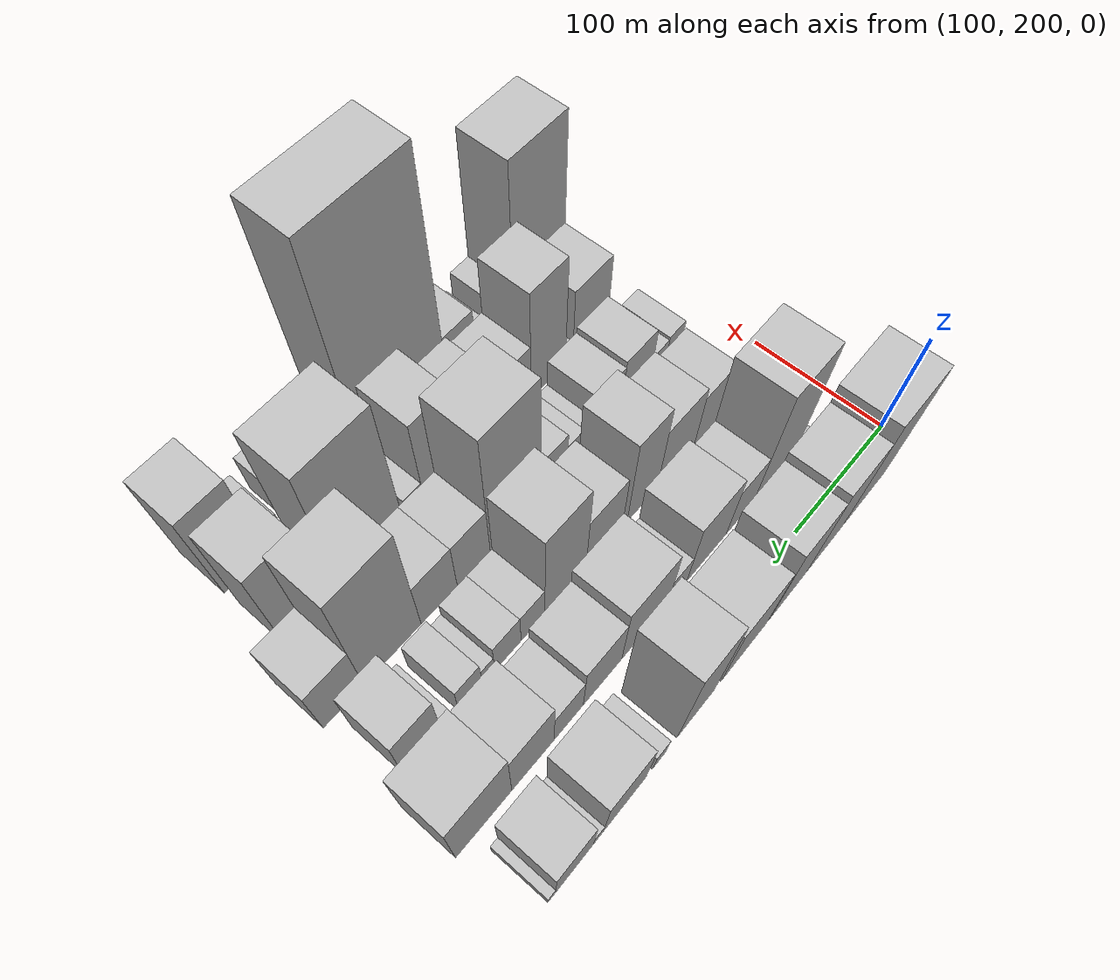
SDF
<sdf version="1.6">
 <world name="default">
  <model name="building_32">
   <static>1</static>
   <pose>100.0000 253.0054 0 0.000000 0.000000 0.000000</pose>
   <link name="link">
    <pose>0 0 63.00 0 0 0</pose>
    <collision name="collision"><geometry><box><size>40.0000 49.4817 126.0000</size></box></geometry></collision>
    <visual name="visual">
     <cast_shadows>0</cast_shadows>
     <geometry><box><size>40.0000 49.4817 126.0000</size></box></geometry>
     <material>
      <script>
       <uri>model://HANNAS_wall/materials/scripts</uri>
       <uri>model://HANNAS_wall/materials/textures</uri>
       <name>vrc/HANNAS_wall</name>
      </script>
     </material>
    </visual>
   </link>
  </model>
  <model name="building_33">
   <static>1</static>
   <pose>100.0000 297.9278 0 0.000000 0.000000 0.000000</pose>
   <link name="link">
    <pose>0 0 54.00 0 0 0</pose>
    <collision name="collision"><geometry><box><size>40.0000 40.3631 108.0000</size></box></geometry></collision>
    <visual name="visual">
     <cast_shadows>0</cast_shadows>
     <geometry><box><size>40.0000 40.3631 108.0000</size></box></geometry>
     <material>
      <script>
       <uri>model://HANNAS_wall/materials/scripts</uri>
       <uri>model://HANNAS_wall/materials/textures</uri>
       <name>vrc/HANNAS_wall</name>
      </script>
     </material>
    </visual>
   </link>
  </model>
  <model name="building_34">
   <static>1</static>
   <pose>100.0000 337.8094 0 0.000000 0.000000 0.000000</pose>
   <link name="link">
    <pose>0 0 49.50 0 0 0</pose>
    <collision name="collision"><geometry><box><size>40.0000 39.4001 99.0000</size></box></geometry></collision>
    <visual name="visual">
     <cast_shadows>0</cast_shadows>
     <geometry><box><size>40.0000 39.4001 99.0000</size></box></geometry>
     <material>
      <script>
       <uri>model://HANNAS_wall/materials/scripts</uri>
       <uri>model://HANNAS_wall/materials/textures</uri>
       <name>vrc/HANNAS_wall</name>
      </script>
     </material>
    </visual>
   </link>
  </model>
  <model name="building_35">
   <static>1</static>
   <pose>100.0000 383.2852 0 0.000000 0.000000 0.000000</pose>
   <link name="link">
    <pose>0 0 40.50 0 0 0</pose>
    <collision name="collision"><geometry><box><size>40.0000 45.5514 81.0000</size></box></geometry></collision>
    <visual name="visual">
     <cast_shadows>0</cast_shadows>
     <geometry><box><size>40.0000 45.5514 81.0000</size></box></geometry>
     <material>
      <script>
       <uri>model://HANNAS_wall/materials/scripts</uri>
       <uri>model://HANNAS_wall/materials/textures</uri>
       <name>vrc/HANNAS_wall</name>
      </script>
     </material>
    </visual>
   </link>
  </model>
  <model name="building_36">
   <static>1</static>
   <pose>100.0000 430.8100 0 0.000000 0.000000 0.000000</pose>
   <link name="link">
    <pose>0 0 57.00 0 0 0</pose>
    <collision name="collision"><geometry><box><size>40.0000 35.4983 114.0000</size></box></geometry></collision>
    <visual name="visual">
     <cast_shadows>0</cast_shadows>
     <geometry><box><size>40.0000 35.4983 114.0000</size></box></geometry>
     <material>
      <script>
       <uri>model://HANNAS_wall/materials/scripts</uri>
       <uri>model://HANNAS_wall/materials/textures</uri>
       <name>vrc/HANNAS_wall</name>
      </script>
     </material>
    </visual>
   </link>
  </model>
  <model name="building_37">
   <static>1</static>
   <pose>100.0000 464.8582 0 0.000000 0.000000 0.000000</pose>
   <link name="link">
    <pose>0 0 13.50 0 0 0</pose>
    <collision name="collision"><geometry><box><size>40.0000 12.5981 27.0000</size></box></geometry></collision>
    <visual name="visual">
     <cast_shadows>0</cast_shadows>
     <geometry><box><size>40.0000 12.5981 27.0000</size></box></geometry>
     <material>
      <script>
       <uri>model://HANNAS_wall/materials/scripts</uri>
       <uri>model://HANNAS_wall/materials/textures</uri>
       <name>vrc/HANNAS_wall</name>
      </script>
     </material>
    </visual>
   </link>
  </model>
  <model name="building_38">
   <static>1</static>
   <pose>100.0000 495.9969 0 0.000000 0.000000 0.000000</pose>
   <link name="link">
    <pose>0 0 34.50 0 0 0</pose>
    <collision name="collision"><geometry><box><size>40.0000 37.6793 69.0000</size></box></geometry></collision>
    <visual name="visual">
     <cast_shadows>0</cast_shadows>
     <geometry><box><size>40.0000 37.6793 69.0000</size></box></geometry>
     <material>
      <script>
       <uri>model://HANNAS_wall/materials/scripts</uri>
       <uri>model://HANNAS_wall/materials/textures</uri>
       <name>vrc/HANNAS_wall</name>
      </script>
     </material>
    </visual>
   </link>
  </model>
  <model name="building_39">
   <static>1</static>
   <pose>100.0000 519.1426 0 0.000000 0.000000 0.000000</pose>
   <link name="link">
    <pose>0 0 9.00 0 0 0</pose>
    <collision name="collision"><geometry><box><size>40.0000 8.6120 18.0000</size></box></geometry></collision>
    <visual name="visual">
     <cast_shadows>0</cast_shadows>
     <geometry><box><size>40.0000 8.6120 18.0000</size></box></geometry>
     <material>
      <script>
       <uri>model://HANNAS_wall/materials/scripts</uri>
       <uri>model://HANNAS_wall/materials/textures</uri>
       <name>vrc/HANNAS_wall</name>
      </script>
     </material>
    </visual>
   </link>
  </model>
  <model name="building_40">
   <static>1</static>
   <pose>100.0000 539.2763 0 0.000000 0.000000 0.000000</pose>
   <link name="link">
    <pose>0 0 28.50 0 0 0</pose>
    <collision name="collision"><geometry><box><size>40.0000 31.6553 57.0000</size></box></geometry></collision>
    <visual name="visual">
     <cast_shadows>0</cast_shadows>
     <geometry><box><size>40.0000 31.6553 57.0000</size></box></geometry>
     <material>
      <script>
       <uri>model://HANNAS_wall/materials/scripts</uri>
       <uri>model://HANNAS_wall/materials/textures</uri>
       <name>vrc/HANNAS_wall</name>
      </script>
     </material>
    </visual>
   </link>
  </model>
  <model name="building_41">
   <static>1</static>
   <pose>100.0000 558.1478 0 0.000000 0.000000 0.000000</pose>
   <link name="link">
    <pose>0 0 7.50 0 0 0</pose>
    <collision name="collision"><geometry><box><size>40.0000 6.0878 15.0000</size></box></geometry></collision>
    <visual name="visual">
     <cast_shadows>0</cast_shadows>
     <geometry><box><size>40.0000 6.0878 15.0000</size></box></geometry>
     <material>
      <script>
       <uri>model://HANNAS_wall/materials/scripts</uri>
       <uri>model://HANNAS_wall/materials/textures</uri>
       <name>vrc/HANNAS_wall</name>
      </script>
     </material>
    </visual>
   </link>
  </model>
  <model name="building_81">
   <static>1</static>
   <pose>152.0000 248.3616 0 0.000000 0.000000 0.000000</pose>
   <link name="link">
    <pose>0 0 10.50 0 0 0</pose>
    <collision name="collision"><geometry><box><size>40.0000 9.3138 21.0000</size></box></geometry></collision>
    <visual name="visual">
     <cast_shadows>0</cast_shadows>
     <geometry><box><size>40.0000 9.3138 21.0000</size></box></geometry>
     <material>
      <script>
       <uri>model://HANNAS_wall/materials/scripts</uri>
       <uri>model://HANNAS_wall/materials/textures</uri>
       <name>vrc/HANNAS_wall</name>
      </script>
     </material>
    </visual>
   </link>
  </model>
  <model name="building_82">
   <static>1</static>
   <pose>152.0000 276.0026 0 0.000000 0.000000 0.000000</pose>
   <link name="link">
    <pose>0 0 63.00 0 0 0</pose>
    <collision name="collision"><geometry><box><size>40.0000 45.9682 126.0000</size></box></geometry></collision>
    <visual name="visual">
     <cast_shadows>0</cast_shadows>
     <geometry><box><size>40.0000 45.9682 126.0000</size></box></geometry>
     <material>
      <script>
       <uri>model://HANNAS_wall/materials/scripts</uri>
       <uri>model://HANNAS_wall/materials/textures</uri>
       <name>vrc/HANNAS_wall</name>
      </script>
     </material>
    </visual>
   </link>
  </model>
  <model name="building_83">
   <static>1</static>
   <pose>152.0000 313.8508 0 0.000000 0.000000 0.000000</pose>
   <link name="link">
    <pose>0 0 28.50 0 0 0</pose>
    <collision name="collision"><geometry><box><size>40.0000 29.7282 57.0000</size></box></geometry></collision>
    <visual name="visual">
     <cast_shadows>0</cast_shadows>
     <geometry><box><size>40.0000 29.7282 57.0000</size></box></geometry>
     <material>
      <script>
       <uri>model://HANNAS_wall/materials/scripts</uri>
       <uri>model://HANNAS_wall/materials/textures</uri>
       <name>vrc/HANNAS_wall</name>
      </script>
     </material>
    </visual>
   </link>
  </model>
  <model name="building_84">
   <static>1</static>
   <pose>152.0000 349.1317 0 0.000000 0.000000 0.000000</pose>
   <link name="link">
    <pose>0 0 37.50 0 0 0</pose>
    <collision name="collision"><geometry><box><size>40.0000 40.8337 75.0000</size></box></geometry></collision>
    <visual name="visual">
     <cast_shadows>0</cast_shadows>
     <geometry><box><size>40.0000 40.8337 75.0000</size></box></geometry>
     <material>
      <script>
       <uri>model://HANNAS_wall/materials/scripts</uri>
       <uri>model://HANNAS_wall/materials/textures</uri>
       <name>vrc/HANNAS_wall</name>
      </script>
     </material>
    </visual>
   </link>
  </model>
  <model name="building_85">
   <static>1</static>
   <pose>152.0000 379.1032 0 0.000000 0.000000 0.000000</pose>
   <link name="link">
    <pose>0 0 18.00 0 0 0</pose>
    <collision name="collision"><geometry><box><size>40.0000 19.1092 36.0000</size></box></geometry></collision>
    <visual name="visual">
     <cast_shadows>0</cast_shadows>
     <geometry><box><size>40.0000 19.1092 36.0000</size></box></geometry>
     <material>
      <script>
       <uri>model://HANNAS_wall/materials/scripts</uri>
       <uri>model://HANNAS_wall/materials/textures</uri>
       <name>vrc/HANNAS_wall</name>
      </script>
     </material>
    </visual>
   </link>
  </model>
  <model name="building_86">
   <static>1</static>
   <pose>152.0000 410.8548 0 0.000000 0.000000 0.000000</pose>
   <link name="link">
    <pose>0 0 37.50 0 0 0</pose>
    <collision name="collision"><geometry><box><size>40.0000 44.3940 75.0000</size></box></geometry></collision>
    <visual name="visual">
     <cast_shadows>0</cast_shadows>
     <geometry><box><size>40.0000 44.3940 75.0000</size></box></geometry>
     <material>
      <script>
       <uri>model://HANNAS_wall/materials/scripts</uri>
       <uri>model://HANNAS_wall/materials/textures</uri>
       <name>vrc/HANNAS_wall</name>
      </script>
     </material>
    </visual>
   </link>
  </model>
  <model name="building_87">
   <static>1</static>
   <pose>152.0000 450.8111 0 0.000000 0.000000 0.000000</pose>
   <link name="link">
    <pose>0 0 30.00 0 0 0</pose>
    <collision name="collision"><geometry><box><size>40.0000 35.5186 60.0000</size></box></geometry></collision>
    <visual name="visual">
     <cast_shadows>0</cast_shadows>
     <geometry><box><size>40.0000 35.5186 60.0000</size></box></geometry>
     <material>
      <script>
       <uri>model://HANNAS_wall/materials/scripts</uri>
       <uri>model://HANNAS_wall/materials/textures</uri>
       <name>vrc/HANNAS_wall</name>
      </script>
     </material>
    </visual>
   </link>
  </model>
  <model name="building_88">
   <static>1</static>
   <pose>152.0000 481.5410 0 0.000000 0.000000 0.000000</pose>
   <link name="link">
    <pose>0 0 22.50 0 0 0</pose>
    <collision name="collision"><geometry><box><size>40.0000 25.9411 45.0000</size></box></geometry></collision>
    <visual name="visual">
     <cast_shadows>0</cast_shadows>
     <geometry><box><size>40.0000 25.9411 45.0000</size></box></geometry>
     <material>
      <script>
       <uri>model://HANNAS_wall/materials/scripts</uri>
       <uri>model://HANNAS_wall/materials/textures</uri>
       <name>vrc/HANNAS_wall</name>
      </script>
     </material>
    </visual>
   </link>
  </model>
  <model name="building_89">
   <static>1</static>
   <pose>152.0000 512.5431 0 0.000000 0.000000 0.000000</pose>
   <link name="link">
    <pose>0 0 34.50 0 0 0</pose>
    <collision name="collision"><geometry><box><size>40.0000 36.0630 69.0000</size></box></geometry></collision>
    <visual name="visual">
     <cast_shadows>0</cast_shadows>
     <geometry><box><size>40.0000 36.0630 69.0000</size></box></geometry>
     <material>
      <script>
       <uri>model://HANNAS_wall/materials/scripts</uri>
       <uri>model://HANNAS_wall/materials/textures</uri>
       <name>vrc/HANNAS_wall</name>
      </script>
     </material>
    </visual>
   </link>
  </model>
  <model name="building_90">
   <static>1</static>
   <pose>152.0000 553.4708 0 0.000000 0.000000 0.000000</pose>
   <link name="link">
    <pose>0 0 39.00 0 0 0</pose>
    <collision name="collision"><geometry><box><size>40.0000 45.7924 78.0000</size></box></geometry></collision>
    <visual name="visual">
     <cast_shadows>0</cast_shadows>
     <geometry><box><size>40.0000 45.7924 78.0000</size></box></geometry>
     <material>
      <script>
       <uri>model://HANNAS_wall/materials/scripts</uri>
       <uri>model://HANNAS_wall/materials/textures</uri>
       <name>vrc/HANNAS_wall</name>
      </script>
     </material>
    </visual>
   </link>
  </model>
  <model name="building_130">
   <static>1</static>
   <pose>204.0000 275.4992 0 0.000000 0.000000 0.000000</pose>
   <link name="link">
    <pose>0 0 30.00 0 0 0</pose>
    <collision name="collision"><geometry><box><size>40.0000 33.4152 60.0000</size></box></geometry></collision>
    <visual name="visual">
     <cast_shadows>0</cast_shadows>
     <geometry><box><size>40.0000 33.4152 60.0000</size></box></geometry>
     <material>
      <script>
       <uri>model://HANNAS_wall/materials/scripts</uri>
       <uri>model://HANNAS_wall/materials/textures</uri>
       <name>vrc/HANNAS_wall</name>
      </script>
     </material>
    </visual>
   </link>
  </model>
  <model name="building_131">
   <static>1</static>
   <pose>204.0000 311.7032 0 0.000000 0.000000 0.000000</pose>
   <link name="link">
    <pose>0 0 36.00 0 0 0</pose>
    <collision name="collision"><geometry><box><size>40.0000 38.9928 72.0000</size></box></geometry></collision>
    <visual name="visual">
     <cast_shadows>0</cast_shadows>
     <geometry><box><size>40.0000 38.9928 72.0000</size></box></geometry>
     <material>
      <script>
       <uri>model://HANNAS_wall/materials/scripts</uri>
       <uri>model://HANNAS_wall/materials/textures</uri>
       <name>vrc/HANNAS_wall</name>
      </script>
     </material>
    </visual>
   </link>
  </model>
  <model name="building_132">
   <static>1</static>
   <pose>204.0000 346.5646 0 0.000000 0.000000 0.000000</pose>
   <link name="link">
    <pose>0 0 49.50 0 0 0</pose>
    <collision name="collision"><geometry><box><size>40.0000 30.7300 99.0000</size></box></geometry></collision>
    <visual name="visual">
     <cast_shadows>0</cast_shadows>
     <geometry><box><size>40.0000 30.7300 99.0000</size></box></geometry>
     <material>
      <script>
       <uri>model://HANNAS_wall/materials/scripts</uri>
       <uri>model://HANNAS_wall/materials/textures</uri>
       <name>vrc/HANNAS_wall</name>
      </script>
     </material>
    </visual>
   </link>
  </model>
  <model name="building_133">
   <static>1</static>
   <pose>204.0000 384.7254 0 0.000000 0.000000 0.000000</pose>
   <link name="link">
    <pose>0 0 33.00 0 0 0</pose>
    <collision name="collision"><geometry><box><size>40.0000 35.5917 66.0000</size></box></geometry></collision>
    <visual name="visual">
     <cast_shadows>0</cast_shadows>
     <geometry><box><size>40.0000 35.5917 66.0000</size></box></geometry>
     <material>
      <script>
       <uri>model://HANNAS_wall/materials/scripts</uri>
       <uri>model://HANNAS_wall/materials/textures</uri>
       <name>vrc/HANNAS_wall</name>
      </script>
     </material>
    </visual>
   </link>
  </model>
  <model name="building_134">
   <static>1</static>
   <pose>204.0000 421.8141 0 0.000000 0.000000 0.000000</pose>
   <link name="link">
    <pose>0 0 54.00 0 0 0</pose>
    <collision name="collision"><geometry><box><size>40.0000 38.5857 108.0000</size></box></geometry></collision>
    <visual name="visual">
     <cast_shadows>0</cast_shadows>
     <geometry><box><size>40.0000 38.5857 108.0000</size></box></geometry>
     <material>
      <script>
       <uri>model://HANNAS_wall/materials/scripts</uri>
       <uri>model://HANNAS_wall/materials/textures</uri>
       <name>vrc/HANNAS_wall</name>
      </script>
     </material>
    </visual>
   </link>
  </model>
  <model name="building_135">
   <static>1</static>
   <pose>204.0000 451.9157 0 0.000000 0.000000 0.000000</pose>
   <link name="link">
    <pose>0 0 19.50 0 0 0</pose>
    <collision name="collision"><geometry><box><size>40.0000 21.6175 39.0000</size></box></geometry></collision>
    <visual name="visual">
     <cast_shadows>0</cast_shadows>
     <geometry><box><size>40.0000 21.6175 39.0000</size></box></geometry>
     <material>
      <script>
       <uri>model://HANNAS_wall/materials/scripts</uri>
       <uri>model://HANNAS_wall/materials/textures</uri>
       <name>vrc/HANNAS_wall</name>
      </script>
     </material>
    </visual>
   </link>
  </model>
  <model name="building_136">
   <static>1</static>
   <pose>204.0000 474.3394 0 0.000000 0.000000 0.000000</pose>
   <link name="link">
    <pose>0 0 19.50 0 0 0</pose>
    <collision name="collision"><geometry><box><size>40.0000 23.2300 39.0000</size></box></geometry></collision>
    <visual name="visual">
     <cast_shadows>0</cast_shadows>
     <geometry><box><size>40.0000 23.2300 39.0000</size></box></geometry>
     <material>
      <script>
       <uri>model://HANNAS_wall/materials/scripts</uri>
       <uri>model://HANNAS_wall/materials/textures</uri>
       <name>vrc/HANNAS_wall</name>
      </script>
     </material>
    </visual>
   </link>
  </model>
  <model name="building_137">
   <static>1</static>
   <pose>204.0000 491.3714 0 0.000000 0.000000 0.000000</pose>
   <link name="link">
    <pose>0 0 12.00 0 0 0</pose>
    <collision name="collision"><geometry><box><size>40.0000 10.8340 24.0000</size></box></geometry></collision>
    <visual name="visual">
     <cast_shadows>0</cast_shadows>
     <geometry><box><size>40.0000 10.8340 24.0000</size></box></geometry>
     <material>
      <script>
       <uri>model://HANNAS_wall/materials/scripts</uri>
       <uri>model://HANNAS_wall/materials/textures</uri>
       <name>vrc/HANNAS_wall</name>
      </script>
     </material>
    </visual>
   </link>
  </model>
  <model name="building_138">
   <static>1</static>
   <pose>204.0000 506.8794 0 0.000000 0.000000 0.000000</pose>
   <link name="link">
    <pose>0 0 18.00 0 0 0</pose>
    <collision name="collision"><geometry><box><size>40.0000 20.1819 36.0000</size></box></geometry></collision>
    <visual name="visual">
     <cast_shadows>0</cast_shadows>
     <geometry><box><size>40.0000 20.1819 36.0000</size></box></geometry>
     <material>
      <script>
       <uri>model://HANNAS_wall/materials/scripts</uri>
       <uri>model://HANNAS_wall/materials/textures</uri>
       <name>vrc/HANNAS_wall</name>
      </script>
     </material>
    </visual>
   </link>
  </model>
  <model name="building_139">
   <static>1</static>
   <pose>204.0000 527.2368 0 0.000000 0.000000 0.000000</pose>
   <link name="link">
    <pose>0 0 10.50 0 0 0</pose>
    <collision name="collision"><geometry><box><size>40.0000 8.5329 21.0000</size></box></geometry></collision>
    <visual name="visual">
     <cast_shadows>0</cast_shadows>
     <geometry><box><size>40.0000 8.5329 21.0000</size></box></geometry>
     <material>
      <script>
       <uri>model://HANNAS_wall/materials/scripts</uri>
       <uri>model://HANNAS_wall/materials/textures</uri>
       <name>vrc/HANNAS_wall</name>
      </script>
     </material>
    </visual>
   </link>
  </model>
  <model name="building_140">
   <static>1</static>
   <pose>204.0000 547.2074 0 0.000000 0.000000 0.000000</pose>
   <link name="link">
    <pose>0 0 30.00 0 0 0</pose>
    <collision name="collision"><geometry><box><size>40.0000 31.4082 60.0000</size></box></geometry></collision>
    <visual name="visual">
     <cast_shadows>0</cast_shadows>
     <geometry><box><size>40.0000 31.4082 60.0000</size></box></geometry>
     <material>
      <script>
       <uri>model://HANNAS_wall/materials/scripts</uri>
       <uri>model://HANNAS_wall/materials/textures</uri>
       <name>vrc/HANNAS_wall</name>
      </script>
     </material>
    </visual>
   </link>
  </model>
  <model name="building_179">
   <static>1</static>
   <pose>256.0000 245.7353 0 0.000000 0.000000 0.000000</pose>
   <link name="link">
    <pose>0 0 16.50 0 0 0</pose>
    <collision name="collision"><geometry><box><size>40.0000 17.3064 33.0000</size></box></geometry></collision>
    <visual name="visual">
     <cast_shadows>0</cast_shadows>
     <geometry><box><size>40.0000 17.3064 33.0000</size></box></geometry>
     <material>
      <script>
       <uri>model://HANNAS_wall/materials/scripts</uri>
       <uri>model://HANNAS_wall/materials/textures</uri>
       <name>vrc/HANNAS_wall</name>
      </script>
     </material>
    </visual>
   </link>
  </model>
  <model name="building_180">
   <static>1</static>
   <pose>256.0000 262.8231 0 0.000000 0.000000 0.000000</pose>
   <link name="link">
    <pose>0 0 15.00 0 0 0</pose>
    <collision name="collision"><geometry><box><size>40.0000 16.8692 30.0000</size></box></geometry></collision>
    <visual name="visual">
     <cast_shadows>0</cast_shadows>
     <geometry><box><size>40.0000 16.8692 30.0000</size></box></geometry>
     <material>
      <script>
       <uri>model://HANNAS_wall/materials/scripts</uri>
       <uri>model://HANNAS_wall/materials/textures</uri>
       <name>vrc/HANNAS_wall</name>
      </script>
     </material>
    </visual>
   </link>
  </model>
  <model name="building_181">
   <static>1</static>
   <pose>256.0000 286.7656 0 0.000000 0.000000 0.000000</pose>
   <link name="link">
    <pose>0 0 30.00 0 0 0</pose>
    <collision name="collision"><geometry><box><size>40.0000 31.0158 60.0000</size></box></geometry></collision>
    <visual name="visual">
     <cast_shadows>0</cast_shadows>
     <geometry><box><size>40.0000 31.0158 60.0000</size></box></geometry>
     <material>
      <script>
       <uri>model://HANNAS_wall/materials/scripts</uri>
       <uri>model://HANNAS_wall/materials/textures</uri>
       <name>vrc/HANNAS_wall</name>
      </script>
     </material>
    </visual>
   </link>
  </model>
  <model name="building_182">
   <static>1</static>
   <pose>256.0000 316.2889 0 0.000000 0.000000 0.000000</pose>
   <link name="link">
    <pose>0 0 27.00 0 0 0</pose>
    <collision name="collision"><geometry><box><size>40.0000 28.0308 54.0000</size></box></geometry></collision>
    <visual name="visual">
     <cast_shadows>0</cast_shadows>
     <geometry><box><size>40.0000 28.0308 54.0000</size></box></geometry>
     <material>
      <script>
       <uri>model://HANNAS_wall/materials/scripts</uri>
       <uri>model://HANNAS_wall/materials/textures</uri>
       <name>vrc/HANNAS_wall</name>
      </script>
     </material>
    </visual>
   </link>
  </model>
  <model name="building_183">
   <static>1</static>
   <pose>256.0000 335.8461 0 0.000000 0.000000 0.000000</pose>
   <link name="link">
    <pose>0 0 13.50 0 0 0</pose>
    <collision name="collision"><geometry><box><size>40.0000 11.0838 27.0000</size></box></geometry></collision>
    <visual name="visual">
     <cast_shadows>0</cast_shadows>
     <geometry><box><size>40.0000 11.0838 27.0000</size></box></geometry>
     <material>
      <script>
       <uri>model://HANNAS_wall/materials/scripts</uri>
       <uri>model://HANNAS_wall/materials/textures</uri>
       <name>vrc/HANNAS_wall</name>
      </script>
     </material>
    </visual>
   </link>
  </model>
  <model name="building_184">
   <static>1</static>
   <pose>256.0000 349.5015 0 0.000000 0.000000 0.000000</pose>
   <link name="link">
    <pose>0 0 15.00 0 0 0</pose>
    <collision name="collision"><geometry><box><size>40.0000 16.2270 30.0000</size></box></geometry></collision>
    <visual name="visual">
     <cast_shadows>0</cast_shadows>
     <geometry><box><size>40.0000 16.2270 30.0000</size></box></geometry>
     <material>
      <script>
       <uri>model://HANNAS_wall/materials/scripts</uri>
       <uri>model://HANNAS_wall/materials/textures</uri>
       <name>vrc/HANNAS_wall</name>
      </script>
     </material>
    </visual>
   </link>
  </model>
  <model name="building_185">
   <static>1</static>
   <pose>256.0000 370.4041 0 0.000000 0.000000 0.000000</pose>
   <link name="link">
    <pose>0 0 22.50 0 0 0</pose>
    <collision name="collision"><geometry><box><size>40.0000 25.5781 45.0000</size></box></geometry></collision>
    <visual name="visual">
     <cast_shadows>0</cast_shadows>
     <geometry><box><size>40.0000 25.5781 45.0000</size></box></geometry>
     <material>
      <script>
       <uri>model://HANNAS_wall/materials/scripts</uri>
       <uri>model://HANNAS_wall/materials/textures</uri>
       <name>vrc/HANNAS_wall</name>
      </script>
     </material>
    </visual>
   </link>
  </model>
  <model name="building_186">
   <static>1</static>
   <pose>256.0000 407.4772 0 0.000000 0.000000 0.000000</pose>
   <link name="link">
    <pose>0 0 70.50 0 0 0</pose>
    <collision name="collision"><geometry><box><size>40.0000 48.5682 141.0000</size></box></geometry></collision>
    <visual name="visual">
     <cast_shadows>0</cast_shadows>
     <geometry><box><size>40.0000 48.5682 141.0000</size></box></geometry>
     <material>
      <script>
       <uri>model://HANNAS_wall/materials/scripts</uri>
       <uri>model://HANNAS_wall/materials/textures</uri>
       <name>vrc/HANNAS_wall</name>
      </script>
     </material>
    </visual>
   </link>
  </model>
  <model name="building_187">
   <static>1</static>
   <pose>256.0000 446.6829 0 0.000000 0.000000 0.000000</pose>
   <link name="link">
    <pose>0 0 28.50 0 0 0</pose>
    <collision name="collision"><geometry><box><size>40.0000 29.8433 57.0000</size></box></geometry></collision>
    <visual name="visual">
     <cast_shadows>0</cast_shadows>
     <geometry><box><size>40.0000 29.8433 57.0000</size></box></geometry>
     <material>
      <script>
       <uri>model://HANNAS_wall/materials/scripts</uri>
       <uri>model://HANNAS_wall/materials/textures</uri>
       <name>vrc/HANNAS_wall</name>
      </script>
     </material>
    </visual>
   </link>
  </model>
  <model name="building_188">
   <static>1</static>
   <pose>256.0000 477.4204 0 0.000000 0.000000 0.000000</pose>
   <link name="link">
    <pose>0 0 28.50 0 0 0</pose>
    <collision name="collision"><geometry><box><size>40.0000 31.6316 57.0000</size></box></geometry></collision>
    <visual name="visual">
     <cast_shadows>0</cast_shadows>
     <geometry><box><size>40.0000 31.6316 57.0000</size></box></geometry>
     <material>
      <script>
       <uri>model://HANNAS_wall/materials/scripts</uri>
       <uri>model://HANNAS_wall/materials/textures</uri>
       <name>vrc/HANNAS_wall</name>
      </script>
     </material>
    </visual>
   </link>
  </model>
  <model name="building_189">
   <static>1</static>
   <pose>256.0000 517.2965 0 0.000000 0.000000 0.000000</pose>
   <link name="link">
    <pose>0 0 66.00 0 0 0</pose>
    <collision name="collision"><geometry><box><size>40.0000 48.1205 132.0000</size></box></geometry></collision>
    <visual name="visual">
     <cast_shadows>0</cast_shadows>
     <geometry><box><size>40.0000 48.1205 132.0000</size></box></geometry>
     <material>
      <script>
       <uri>model://HANNAS_wall/materials/scripts</uri>
       <uri>model://HANNAS_wall/materials/textures</uri>
       <name>vrc/HANNAS_wall</name>
      </script>
     </material>
    </visual>
   </link>
  </model>
  <model name="building_190">
   <static>1</static>
   <pose>256.0000 557.6050 0 0.000000 0.000000 0.000000</pose>
   <link name="link">
    <pose>0 0 30.00 0 0 0</pose>
    <collision name="collision"><geometry><box><size>40.0000 32.4966 60.0000</size></box></geometry></collision>
    <visual name="visual">
     <cast_shadows>0</cast_shadows>
     <geometry><box><size>40.0000 32.4966 60.0000</size></box></geometry>
     <material>
      <script>
       <uri>model://HANNAS_wall/materials/scripts</uri>
       <uri>model://HANNAS_wall/materials/textures</uri>
       <name>vrc/HANNAS_wall</name>
      </script>
     </material>
    </visual>
   </link>
  </model>
  <model name="building_231">
   <static>1</static>
   <pose>308.0000 270.4436 0 0.000000 0.000000 0.000000</pose>
   <link name="link">
    <pose>0 0 36.00 0 0 0</pose>
    <collision name="collision"><geometry><box><size>40.0000 37.8076 72.0000</size></box></geometry></collision>
    <visual name="visual">
     <cast_shadows>0</cast_shadows>
     <geometry><box><size>40.0000 37.8076 72.0000</size></box></geometry>
     <material>
      <script>
       <uri>model://HANNAS_wall/materials/scripts</uri>
       <uri>model://HANNAS_wall/materials/textures</uri>
       <name>vrc/HANNAS_wall</name>
      </script>
     </material>
    </visual>
   </link>
  </model>
  <model name="building_232">
   <static>1</static>
   <pose>308.0000 293.1586 0 0.000000 0.000000 0.000000</pose>
   <link name="link">
    <pose>0 0 9.00 0 0 0</pose>
    <collision name="collision"><geometry><box><size>40.0000 7.6223 18.0000</size></box></geometry></collision>
    <visual name="visual">
     <cast_shadows>0</cast_shadows>
     <geometry><box><size>40.0000 7.6223 18.0000</size></box></geometry>
     <material>
      <script>
       <uri>model://HANNAS_wall/materials/scripts</uri>
       <uri>model://HANNAS_wall/materials/textures</uri>
       <name>vrc/HANNAS_wall</name>
      </script>
     </material>
    </visual>
   </link>
  </model>
  <model name="building_233">
   <static>1</static>
   <pose>308.0000 314.6177 0 0.000000 0.000000 0.000000</pose>
   <link name="link">
    <pose>0 0 57.00 0 0 0</pose>
    <collision name="collision"><geometry><box><size>40.0000 35.2958 114.0000</size></box></geometry></collision>
    <visual name="visual">
     <cast_shadows>0</cast_shadows>
     <geometry><box><size>40.0000 35.2958 114.0000</size></box></geometry>
     <material>
      <script>
       <uri>model://HANNAS_wall/materials/scripts</uri>
       <uri>model://HANNAS_wall/materials/textures</uri>
       <name>vrc/HANNAS_wall</name>
      </script>
     </material>
    </visual>
   </link>
  </model>
  <model name="building_234">
   <static>1</static>
   <pose>308.0000 348.3277 0 0.000000 0.000000 0.000000</pose>
   <link name="link">
    <pose>0 0 30.00 0 0 0</pose>
    <collision name="collision"><geometry><box><size>40.0000 32.1243 60.0000</size></box></geometry></collision>
    <visual name="visual">
     <cast_shadows>0</cast_shadows>
     <geometry><box><size>40.0000 32.1243 60.0000</size></box></geometry>
     <material>
      <script>
       <uri>model://HANNAS_wall/materials/scripts</uri>
       <uri>model://HANNAS_wall/materials/textures</uri>
       <name>vrc/HANNAS_wall</name>
      </script>
     </material>
    </visual>
   </link>
  </model>
  <model name="building_235">
   <static>1</static>
   <pose>308.0000 382.7626 0 0.000000 0.000000 0.000000</pose>
   <link name="link">
    <pose>0 0 34.50 0 0 0</pose>
    <collision name="collision"><geometry><box><size>40.0000 36.7454 69.0000</size></box></geometry></collision>
    <visual name="visual">
     <cast_shadows>0</cast_shadows>
     <geometry><box><size>40.0000 36.7454 69.0000</size></box></geometry>
     <material>
      <script>
       <uri>model://HANNAS_wall/materials/scripts</uri>
       <uri>model://HANNAS_wall/materials/textures</uri>
       <name>vrc/HANNAS_wall</name>
      </script>
     </material>
    </visual>
   </link>
  </model>
  <model name="building_236">
   <static>1</static>
   <pose>308.0000 417.7834 0 0.000000 0.000000 0.000000</pose>
   <link name="link">
    <pose>0 0 49.50 0 0 0</pose>
    <collision name="collision"><geometry><box><size>40.0000 33.2963 99.0000</size></box></geometry></collision>
    <visual name="visual">
     <cast_shadows>0</cast_shadows>
     <geometry><box><size>40.0000 33.2963 99.0000</size></box></geometry>
     <material>
      <script>
       <uri>model://HANNAS_wall/materials/scripts</uri>
       <uri>model://HANNAS_wall/materials/textures</uri>
       <name>vrc/HANNAS_wall</name>
      </script>
     </material>
    </visual>
   </link>
  </model>
  <model name="building_237">
   <static>1</static>
   <pose>308.0000 442.3478 0 0.000000 0.000000 0.000000</pose>
   <link name="link">
    <pose>0 0 15.00 0 0 0</pose>
    <collision name="collision"><geometry><box><size>40.0000 15.8324 30.0000</size></box></geometry></collision>
    <visual name="visual">
     <cast_shadows>0</cast_shadows>
     <geometry><box><size>40.0000 15.8324 30.0000</size></box></geometry>
     <material>
      <script>
       <uri>model://HANNAS_wall/materials/scripts</uri>
       <uri>model://HANNAS_wall/materials/textures</uri>
       <name>vrc/HANNAS_wall</name>
      </script>
     </material>
    </visual>
   </link>
  </model>
  <model name="building_238">
   <static>1</static>
   <pose>308.0000 480.6802 0 0.000000 0.000000 0.000000</pose>
   <link name="link">
    <pose>0 0 73.50 0 0 0</pose>
    <collision name="collision"><geometry><box><size>40.0000 54.8323 147.0000</size></box></geometry></collision>
    <visual name="visual">
     <cast_shadows>0</cast_shadows>
     <geometry><box><size>40.0000 54.8323 147.0000</size></box></geometry>
     <material>
      <script>
       <uri>model://HANNAS_wall/materials/scripts</uri>
       <uri>model://HANNAS_wall/materials/textures</uri>
       <name>vrc/HANNAS_wall</name>
      </script>
     </material>
    </visual>
   </link>
  </model>
  <model name="building_239">
   <static>1</static>
   <pose>308.0000 536.2204 0 0.000000 0.000000 0.000000</pose>
   <link name="link">
    <pose>0 0 51.00 0 0 0</pose>
    <collision name="collision"><geometry><box><size>40.0000 36.2481 102.0000</size></box></geometry></collision>
    <visual name="visual">
     <cast_shadows>0</cast_shadows>
     <geometry><box><size>40.0000 36.2481 102.0000</size></box></geometry>
     <material>
      <script>
       <uri>model://HANNAS_wall/materials/scripts</uri>
       <uri>model://HANNAS_wall/materials/textures</uri>
       <name>vrc/HANNAS_wall</name>
      </script>
     </material>
    </visual>
   </link>
  </model>
  <model name="building_289">
   <static>1</static>
   <pose>360.0000 263.1469 0 0.000000 0.000000 0.000000</pose>
   <link name="link">
    <pose>0 0 75.00 0 0 0</pose>
    <collision name="collision"><geometry><box><size>40.0000 53.9693 150.0000</size></box></geometry></collision>
    <visual name="visual">
     <cast_shadows>0</cast_shadows>
     <geometry><box><size>40.0000 53.9693 150.0000</size></box></geometry>
     <material>
      <script>
       <uri>model://HANNAS_wall/materials/scripts</uri>
       <uri>model://HANNAS_wall/materials/textures</uri>
       <name>vrc/HANNAS_wall</name>
      </script>
     </material>
    </visual>
   </link>
  </model>
  <model name="building_290">
   <static>1</static>
   <pose>360.0000 299.2669 0 0.000000 0.000000 0.000000</pose>
   <link name="link">
    <pose>0 0 16.50 0 0 0</pose>
    <collision name="collision"><geometry><box><size>40.0000 18.2707 33.0000</size></box></geometry></collision>
    <visual name="visual">
     <cast_shadows>0</cast_shadows>
     <geometry><box><size>40.0000 18.2707 33.0000</size></box></geometry>
     <material>
      <script>
       <uri>model://HANNAS_wall/materials/scripts</uri>
       <uri>model://HANNAS_wall/materials/textures</uri>
       <name>vrc/HANNAS_wall</name>
      </script>
     </material>
    </visual>
   </link>
  </model>
  <model name="building_291">
   <static>1</static>
   <pose>360.0000 317.7786 0 0.000000 0.000000 0.000000</pose>
   <link name="link">
    <pose>0 0 9.00 0 0 0</pose>
    <collision name="collision"><geometry><box><size>40.0000 8.7528 18.0000</size></box></geometry></collision>
    <visual name="visual">
     <cast_shadows>0</cast_shadows>
     <geometry><box><size>40.0000 8.7528 18.0000</size></box></geometry>
     <material>
      <script>
       <uri>model://HANNAS_wall/materials/scripts</uri>
       <uri>model://HANNAS_wall/materials/textures</uri>
       <name>vrc/HANNAS_wall</name>
      </script>
     </material>
    </visual>
   </link>
  </model>
  <model name="building_292">
   <static>1</static>
   <pose>360.0000 343.4206 0 0.000000 0.000000 0.000000</pose>
   <link name="link">
    <pose>0 0 24.00 0 0 0</pose>
    <collision name="collision"><geometry><box><size>40.0000 28.5313 48.0000</size></box></geometry></collision>
    <visual name="visual">
     <cast_shadows>0</cast_shadows>
     <geometry><box><size>40.0000 28.5313 48.0000</size></box></geometry>
     <material>
      <script>
       <uri>model://HANNAS_wall/materials/scripts</uri>
       <uri>model://HANNAS_wall/materials/textures</uri>
       <name>vrc/HANNAS_wall</name>
      </script>
     </material>
    </visual>
   </link>
  </model>
  <model name="building_293">
   <static>1</static>
   <pose>360.0000 397.7749 0 0.000000 0.000000 0.000000</pose>
   <link name="link">
    <pose>0 0 109.50 0 0 0</pose>
    <collision name="collision"><geometry><box><size>40.0000 80.1771 219.0000</size></box></geometry></collision>
    <visual name="visual">
     <cast_shadows>0</cast_shadows>
     <geometry><box><size>40.0000 80.1771 219.0000</size></box></geometry>
     <material>
      <script>
       <uri>model://HANNAS_wall/materials/scripts</uri>
       <uri>model://HANNAS_wall/materials/textures</uri>
       <name>vrc/HANNAS_wall</name>
      </script>
     </material>
    </visual>
   </link>
  </model>
  <model name="building_294">
   <static>1</static>
   <pose>360.0000 459.0256 0 0.000000 0.000000 0.000000</pose>
   <link name="link">
    <pose>0 0 27.00 0 0 0</pose>
    <collision name="collision"><geometry><box><size>40.0000 32.3242 54.0000</size></box></geometry></collision>
    <visual name="visual">
     <cast_shadows>0</cast_shadows>
     <geometry><box><size>40.0000 32.3242 54.0000</size></box></geometry>
     <material>
      <script>
       <uri>model://HANNAS_wall/materials/scripts</uri>
       <uri>model://HANNAS_wall/materials/textures</uri>
       <name>vrc/HANNAS_wall</name>
      </script>
     </material>
    </visual>
   </link>
  </model>
  <model name="building_295">
   <static>1</static>
   <pose>360.0000 486.7569 0 0.000000 0.000000 0.000000</pose>
   <link name="link">
    <pose>0 0 21.00 0 0 0</pose>
    <collision name="collision"><geometry><box><size>40.0000 23.1385 42.0000</size></box></geometry></collision>
    <visual name="visual">
     <cast_shadows>0</cast_shadows>
     <geometry><box><size>40.0000 23.1385 42.0000</size></box></geometry>
     <material>
      <script>
       <uri>model://HANNAS_wall/materials/scripts</uri>
       <uri>model://HANNAS_wall/materials/textures</uri>
       <name>vrc/HANNAS_wall</name>
      </script>
     </material>
    </visual>
   </link>
  </model>
  <model name="building_296">
   <static>1</static>
   <pose>360.0000 513.1181 0 0.000000 0.000000 0.000000</pose>
   <link name="link">
    <pose>0 0 15.00 0 0 0</pose>
    <collision name="collision"><geometry><box><size>40.0000 15.5838 30.0000</size></box></geometry></collision>
    <visual name="visual">
     <cast_shadows>0</cast_shadows>
     <geometry><box><size>40.0000 15.5838 30.0000</size></box></geometry>
     <material>
      <script>
       <uri>model://HANNAS_wall/materials/scripts</uri>
       <uri>model://HANNAS_wall/materials/textures</uri>
       <name>vrc/HANNAS_wall</name>
      </script>
     </material>
    </visual>
   </link>
  </model>
  <model name="building_297">
   <static>1</static>
   <pose>360.0000 538.4133 0 0.000000 0.000000 0.000000</pose>
   <link name="link">
    <pose>0 0 49.50 0 0 0</pose>
    <collision name="collision"><geometry><box><size>40.0000 35.0067 99.0000</size></box></geometry></collision>
    <visual name="visual">
     <cast_shadows>0</cast_shadows>
     <geometry><box><size>40.0000 35.0067 99.0000</size></box></geometry>
     <material>
      <script>
       <uri>model://HANNAS_wall/materials/scripts</uri>
       <uri>model://HANNAS_wall/materials/textures</uri>
       <name>vrc/HANNAS_wall</name>
      </script>
     </material>
    </visual>
   </link>
  </model>
 </world>
</sdf>
